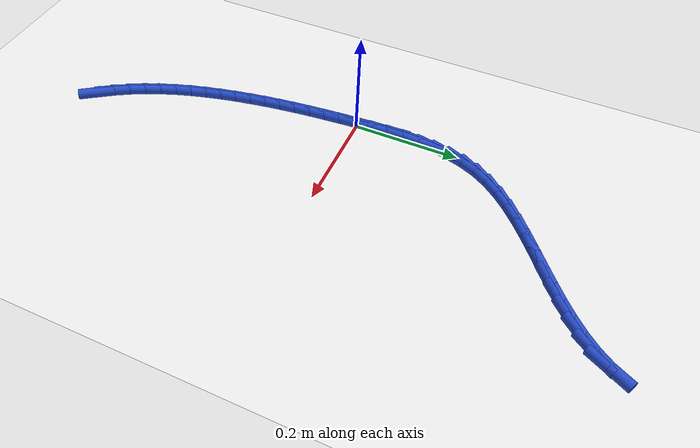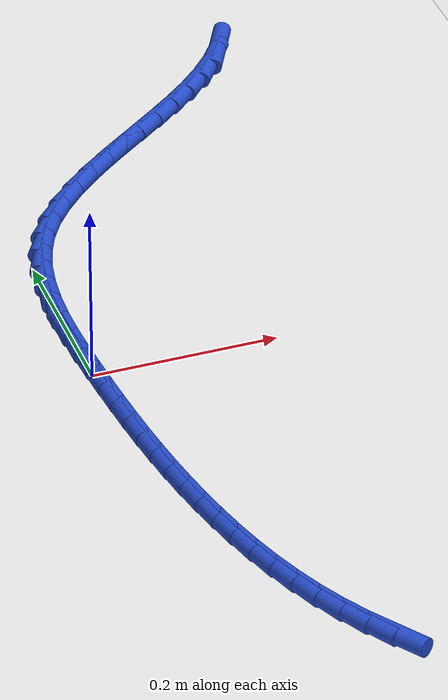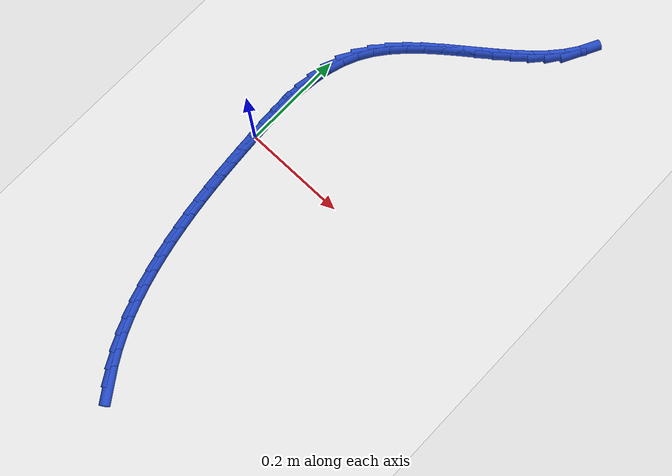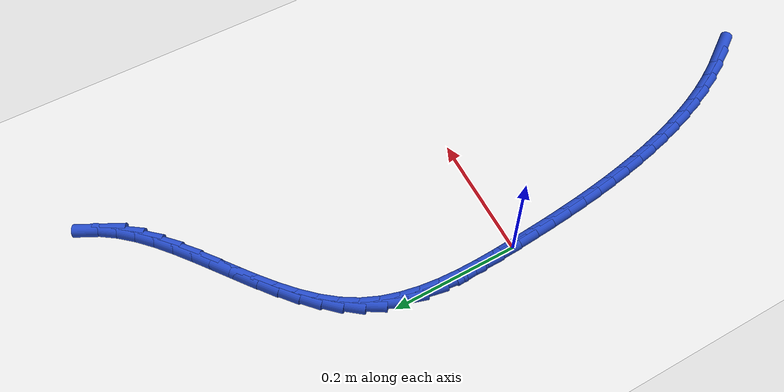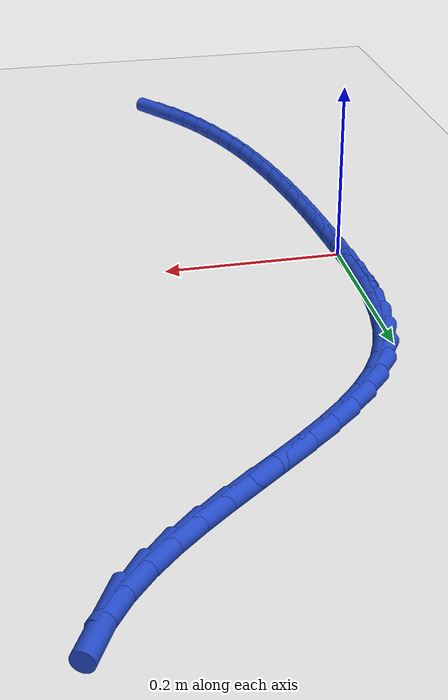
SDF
<sdf version="1.6">
 <world name="default">
  <model name="ground_plane">
   <static>1</static>
   <link name="link">
    <collision name="collision">
     <geometry><plane><normal>0 0 1</normal><size>100 100</size></plane></geometry>
     <surface><friction><ode><mu>100</mu><mu2>50</mu2></ode></friction></surface>
    </collision>
    <visual name="visual">
     <cast_shadows>0</cast_shadows>
     <geometry><plane><normal>0 0 1</normal><size>100 100</size></plane></geometry>
     <material>
      <script><uri>file://media/materials/scripts/gazebo.material</uri><name>Gazebo/WhiteGlow</name></script>
     </material>
    </visual>
   </link>
  </model>
  <model name="line">
   <link name="link_0">
    <pose>-9.75781955236954e-18 -8.326672684688674e-17 0.01 0 1.57 -1.511199921775227</pose>
    <collision name="collision">
     <geometry><cylinder><radius>0.01</radius><length>0.08</length></cylinder></geometry>
    </collision>
    <visual name="visual">
     <material>
      <script><name>Gazebo/Blue</name><uri>file://media/materials/scripts/gazebo.material</uri></script>
     </material>
     <geometry><cylinder><radius>0.01</radius><length>0.08</length></cylinder></geometry>
    </visual>
   </link>
   <link name="link_1">
    <pose>-0.0018788935683571061 0.03148962758798921 0.01 0 1.57 -1.5325228419579033</pose>
    <collision name="collision">
     <geometry><cylinder><radius>0.01</radius><length>0.08</length></cylinder></geometry>
    </collision>
    <visual name="visual">
     <material>
      <script><name>Gazebo/Blue</name><uri>file://media/materials/scripts/gazebo.material</uri></script>
     </material>
     <geometry><cylinder><radius>0.01</radius><length>0.08</length></cylinder></geometry>
    </visual>
   </link>
   <link name="link_2">
    <pose>-0.003091062676038948 0.0631454114593483 0.01 0 1.57 -1.5673808474522573</pose>
    <collision name="collision">
     <geometry><cylinder><radius>0.01</radius><length>0.08</length></cylinder></geometry>
    </collision>
    <visual name="visual">
     <material>
      <script><name>Gazebo/Blue</name><uri>file://media/materials/scripts/gazebo.material</uri></script>
     </material>
     <geometry><cylinder><radius>0.01</radius><length>0.08</length></cylinder></geometry>
    </visual>
   </link>
   <link name="link_3">
    <pose>-0.0031988975344590114 0.09471768237245247 0.01 0 1.57 1.5249210132544264</pose>
    <collision name="collision">
     <geometry><cylinder><radius>0.01</radius><length>0.08</length></cylinder></geometry>
    </collision>
    <visual name="visual">
     <material>
      <script><name>Gazebo/Blue</name><uri>file://media/materials/scripts/gazebo.material</uri></script>
     </material>
     <geometry><cylinder><radius>0.01</radius><length>0.08</length></cylinder></geometry>
    </visual>
   </link>
   <link name="link_4">
    <pose>-0.0017647883550307745 0.12595677108567713 0.01 0 1.57 1.459900204618824</pose>
    <collision name="collision">
     <geometry><cylinder><radius>0.01</radius><length>0.08</length></cylinder></geometry>
    </collision>
    <visual name="visual">
     <material>
      <script><name>Gazebo/Blue</name><uri>file://media/materials/scripts/gazebo.material</uri></script>
     </material>
     <geometry><cylinder><radius>0.01</radius><length>0.08</length></cylinder></geometry>
    </visual>
   </link>
   <link name="link_5">
    <pose>0.001648874650832295 0.1566130083573974 0.01 0 1.57 1.3777220439233588</pose>
    <collision name="collision">
     <geometry><cylinder><radius>0.01</radius><length>0.08</length></cylinder></geometry>
    </collision>
    <visual name="visual">
     <material>
      <script><name>Gazebo/Blue</name><uri>file://media/materials/scripts/gazebo.material</uri></script>
     </material>
     <geometry><cylinder><radius>0.01</radius><length>0.08</length></cylinder></geometry>
    </visual>
   </link>
   <link name="link_6">
    <pose>0.007479701271716713 0.18643672494598856 0.01 0 1.57 1.2773252558742256</pose>
    <collision name="collision">
     <geometry><cylinder><radius>0.01</radius><length>0.08</length></cylinder></geometry>
    </collision>
    <visual name="visual">
     <material>
      <script><name>Gazebo/Blue</name><uri>file://media/materials/scripts/gazebo.material</uri></script>
     </material>
     <geometry><cylinder><radius>0.01</radius><length>0.08</length></cylinder></geometry>
    </visual>
   </link>
   <link name="link_7">
    <pose>0.016165301296209016 0.21517825160982598 0.01 0 1.57 1.1588069050394254</pose>
    <collision name="collision">
     <geometry><cylinder><radius>0.01</radius><length>0.08</length></cylinder></geometry>
    </collision>
    <visual name="visual">
     <material>
      <script><name>Gazebo/Blue</name><uri>file://media/materials/scripts/gazebo.material</uri></script>
     </material>
     <geometry><cylinder><radius>0.01</radius><length>0.08</length></cylinder></geometry>
    </visual>
   </link>
   <link name="link_8">
    <pose>0.02814328451289572 0.24258791910728503 0.01 0 1.57 1.0272415689124124</pose>
    <collision name="collision">
     <geometry><cylinder><radius>0.01</radius><length>0.08</length></cylinder></geometry>
    </collision>
    <visual name="visual">
     <material>
      <script><name>Gazebo/Blue</name><uri>file://media/materials/scripts/gazebo.material</uri></script>
     </material>
     <geometry><cylinder><radius>0.01</radius><length>0.08</length></cylinder></geometry>
    </visual>
   </link>
   <link name="link_9">
    <pose>0.04377279549229901 0.26845294506043443 0.01 0 1.57 0.9093564041124712</pose>
    <collision name="collision">
     <geometry><cylinder><radius>0.01</radius><length>0.08</length></cylinder></geometry>
    </collision>
    <visual name="visual">
     <material>
      <script><name>Gazebo/Blue</name><uri>file://media/materials/scripts/gazebo.material</uri></script>
     </material>
     <geometry><cylinder><radius>0.01</radius><length>0.08</length></cylinder></geometry>
    </visual>
   </link>
   <link name="link_10">
    <pose>0.06277278021340472 0.2928615074246651 0.01 0 1.57 0.8167476944167987</pose>
    <collision name="collision">
     <geometry><cylinder><radius>0.01</radius><length>0.08</length></cylinder></geometry>
    </collision>
    <visual name="visual">
     <material>
      <script><name>Gazebo/Blue</name><uri>file://media/materials/scripts/gazebo.material</uri></script>
     </material>
     <geometry><cylinder><radius>0.01</radius><length>0.08</length></cylinder></geometry>
    </visual>
   </link>
   <link name="link_11">
    <pose>0.08454982922023695 0.31604862389707283 0.01 0 1.57 0.7473552997154909</pose>
    <collision name="collision">
     <geometry><cylinder><radius>0.01</radius><length>0.08</length></cylinder></geometry>
    </collision>
    <visual name="visual">
     <material>
      <script><name>Gazebo/Blue</name><uri>file://media/materials/scripts/gazebo.material</uri></script>
     </material>
     <geometry><cylinder><radius>0.01</radius><length>0.08</length></cylinder></geometry>
    </visual>
   </link>
   <link name="link_12">
    <pose>0.1085084251450236 0.3382503031138856 0.01 0 1.57 0.6985396626724754</pose>
    <collision name="collision">
     <geometry><cylinder><radius>0.01</radius><length>0.08</length></cylinder></geometry>
    </collision>
    <visual name="visual">
     <material>
      <script><name>Gazebo/Blue</name><uri>file://media/materials/scripts/gazebo.material</uri></script>
     </material>
     <geometry><cylinder><radius>0.01</radius><length>0.08</length></cylinder></geometry>
    </visual>
   </link>
   <link name="link_13">
    <pose>0.1340530506199926 0.3597025537113314 0.01 0 1.57 0.668058092013355</pose>
    <collision name="collision">
     <geometry><cylinder><radius>0.01</radius><length>0.08</length></cylinder></geometry>
    </collision>
    <visual name="visual">
     <material>
      <script><name>Gazebo/Blue</name><uri>file://media/materials/scripts/gazebo.material</uri></script>
     </material>
     <geometry><cylinder><radius>0.01</radius><length>0.08</length></cylinder></geometry>
    </visual>
   </link>
   <link name="link_14">
    <pose>0.1605881882773719 0.3806413843256385 0.01 0 1.57 0.6544330675874</pose>
    <collision name="collision">
     <geometry><cylinder><radius>0.01</radius><length>0.08</length></cylinder></geometry>
    </collision>
    <visual name="visual">
     <material>
      <script><name>Gazebo/Blue</name><uri>file://media/materials/scripts/gazebo.material</uri></script>
     </material>
     <geometry><cylinder><radius>0.01</radius><length>0.08</length></cylinder></geometry>
    </visual>
   </link>
   <link name="link_15">
    <pose>0.18751832074938934 0.40130280359303455 0.01 0 1.57 0.6570756806640027</pose>
    <collision name="collision">
     <geometry><cylinder><radius>0.01</radius><length>0.08</length></cylinder></geometry>
    </collision>
    <visual name="visual">
     <material>
      <script><name>Gazebo/Blue</name><uri>file://media/materials/scripts/gazebo.material</uri></script>
     </material>
     <geometry><cylinder><radius>0.01</radius><length>0.08</length></cylinder></geometry>
    </visual>
   </link>
   <link name="link_16">
    <pose>0.2142479306682729 0.4219228201497477 0.01 0 1.57 0.6763322537236033</pose>
    <collision name="collision">
     <geometry><cylinder><radius>0.01</radius><length>0.08</length></cylinder></geometry>
    </collision>
    <visual name="visual">
     <material>
      <script><name>Gazebo/Blue</name><uri>file://media/materials/scripts/gazebo.material</uri></script>
     </material>
     <geometry><cylinder><radius>0.01</radius><length>0.08</length></cylinder></geometry>
    </visual>
   </link>
   <link name="link_17">
    <pose>0.24018150066625055 0.4427374426320062 0.01 0 1.57 0.7135201583428747</pose>
    <collision name="collision">
     <geometry><cylinder><radius>0.01</radius><length>0.08</length></cylinder></geometry>
    </collision>
    <visual name="visual">
     <material>
      <script><name>Gazebo/Blue</name><uri>file://media/materials/scripts/gazebo.material</uri></script>
     </material>
     <geometry><cylinder><radius>0.01</radius><length>0.08</length></cylinder></geometry>
    </visual>
   </link>
   <link name="link_18">
    <pose>0.2647235133755502 0.46398267967603796 0.01 0 1.57 0.7709371945820565</pose>
    <collision name="collision">
     <geometry><cylinder><radius>0.01</radius><length>0.08</length></cylinder></geometry>
    </collision>
    <visual name="visual">
     <material>
      <script><name>Gazebo/Blue</name><uri>file://media/materials/scripts/gazebo.material</uri></script>
     </material>
     <geometry><cylinder><radius>0.01</radius><length>0.08</length></cylinder></geometry>
    </visual>
   </link>
   <link name="link_19">
    <pose>0.2872784514283997 0.4858945399180709 0.01 0 1.57 0.8517264316414026</pose>
    <collision name="collision">
     <geometry><cylinder><radius>0.01</radius><length>0.08</length></cylinder></geometry>
    </collision>
    <visual name="visual">
     <material>
      <script><name>Gazebo/Blue</name><uri>file://media/materials/scripts/gazebo.material</uri></script>
     </material>
     <geometry><cylinder><radius>0.01</radius><length>0.08</length></cylinder></geometry>
    </visual>
   </link>
   <link name="link_20">
    <pose>0.3072507974570271 0.5087090319943331 0.01 0 1.57 0.9593130246366601</pose>
    <collision name="collision">
     <geometry><cylinder><radius>0.01</radius><length>0.08</length></cylinder></geometry>
    </collision>
    <visual name="visual">
     <material>
      <script><name>Gazebo/Blue</name><uri>file://media/materials/scripts/gazebo.material</uri></script>
     </material>
     <geometry><cylinder><radius>0.01</radius><length>0.08</length></cylinder></geometry>
    </visual>
   </link>
   <link name="link_21">
    <pose>0.32404503409366026 0.5326621645410528 0.01 0 1.57 1.0959450255256458</pose>
    <collision name="collision">
     <geometry><cylinder><radius>0.01</radius><length>0.08</length></cylinder></geometry>
    </collision>
    <visual name="visual">
     <material>
      <script><name>Gazebo/Blue</name><uri>file://media/materials/scripts/gazebo.material</uri></script>
     </material>
     <geometry><cylinder><radius>0.01</radius><length>0.08</length></cylinder></geometry>
    </visual>
   </link>
   <link name="link_233">
    <pose>0.13340262286074633 -0.49531018709142666 0.01 0 1.57 -0.9650313949972913</pose>
    <collision name="collision">
     <geometry><cylinder><radius>0.01</radius><length>0.08</length></cylinder></geometry>
    </collision>
    <visual name="visual">
     <material>
      <script><name>Gazebo/Blue</name><uri>file://media/materials/scripts/gazebo.material</uri></script>
     </material>
     <geometry><cylinder><radius>0.01</radius><length>0.08</length></cylinder></geometry>
    </visual>
   </link>
   <link name="link_234">
    <pose>0.1158177398288557 -0.469921751596226 0.01 0 1.57 -1.0321710226774898</pose>
    <collision name="collision">
     <geometry><cylinder><radius>0.01</radius><length>0.08</length></cylinder></geometry>
    </collision>
    <visual name="visual">
     <material>
      <script><name>Gazebo/Blue</name><uri>file://media/materials/scripts/gazebo.material</uri></script>
     </material>
     <geometry><cylinder><radius>0.01</radius><length>0.08</length></cylinder></geometry>
    </visual>
   </link>
   <link name="link_235">
    <pose>0.10005098707865341 -0.44353664147861405 0.01 0 1.57 -1.094339050905677</pose>
    <collision name="collision">
     <geometry><cylinder><radius>0.01</radius><length>0.08</length></cylinder></geometry>
    </collision>
    <visual name="visual">
     <material>
      <script><name>Gazebo/Blue</name><uri>file://media/materials/scripts/gazebo.material</uri></script>
     </material>
     <geometry><cylinder><radius>0.01</radius><length>0.08</length></cylinder></geometry>
    </visual>
   </link>
   <link name="link_236">
    <pose>0.08598326260295024 -0.41627974692472514 0.01 0 1.57 -1.1509021897144345</pose>
    <collision name="collision">
     <geometry><cylinder><radius>0.01</radius><length>0.08</length></cylinder></geometry>
    </collision>
    <visual name="visual">
     <material>
      <script><name>Gazebo/Blue</name><uri>file://media/materials/scripts/gazebo.material</uri></script>
     </material>
     <geometry><cylinder><radius>0.01</radius><length>0.08</length></cylinder></geometry>
    </visual>
   </link>
   <link name="link_237">
    <pose>0.07348442991921098 -0.3882834281898599 0.01 0 1.57 -1.2018336557186902</pose>
    <collision name="collision">
     <geometry><cylinder><radius>0.01</radius><length>0.08</length></cylinder></geometry>
    </collision>
    <visual name="visual">
     <material>
      <script><name>Gazebo/Blue</name><uri>file://media/materials/scripts/gazebo.material</uri></script>
     </material>
     <geometry><cylinder><radius>0.01</radius><length>0.08</length></cylinder></geometry>
    </visual>
   </link>
   <link name="link_238">
    <pose>0.06242435254490042 -0.35968004552931904 0.01 0 1.57 -1.2472280911802835</pose>
    <collision name="collision">
     <geometry><cylinder><radius>0.01</radius><length>0.08</length></cylinder></geometry>
    </collision>
    <visual name="visual">
     <material>
      <script><name>Gazebo/Blue</name><uri>file://media/materials/scripts/gazebo.material</uri></script>
     </material>
     <geometry><cylinder><radius>0.01</radius><length>0.08</length></cylinder></geometry>
    </visual>
   </link>
   <link name="link_239">
    <pose>0.05267289399748343 -0.3306019591984035 0.01 0 1.57 -1.2872522881486574</pose>
    <collision name="collision">
     <geometry><cylinder><radius>0.01</radius><length>0.08</length></cylinder></geometry>
    </collision>
    <visual name="visual">
     <material>
      <script><name>Gazebo/Blue</name><uri>file://media/materials/scripts/gazebo.material</uri></script>
     </material>
     <geometry><cylinder><radius>0.01</radius><length>0.08</length></cylinder></geometry>
    </visual>
   </link>
   <link name="link_240">
    <pose>0.04409991779442501 -0.3011815294524144 0.01 0 1.57 -1.3221038983762456</pose>
    <collision name="collision">
     <geometry><cylinder><radius>0.01</radius><length>0.08</length></cylinder></geometry>
    </collision>
    <visual name="visual">
     <material>
      <script><name>Gazebo/Blue</name><uri>file://media/materials/scripts/gazebo.material</uri></script>
     </material>
     <geometry><cylinder><radius>0.01</radius><length>0.08</length></cylinder></geometry>
    </visual>
   </link>
   <link name="link_241">
    <pose>0.036575287453189526 -0.27155111654665104 0.01 0 1.57 -1.3519852400862908</pose>
    <collision name="collision">
     <geometry><cylinder><radius>0.01</radius><length>0.08</length></cylinder></geometry>
    </collision>
    <visual name="visual">
     <material>
      <script><name>Gazebo/Blue</name><uri>file://media/materials/scripts/gazebo.material</uri></script>
     </material>
     <geometry><cylinder><radius>0.01</radius><length>0.08</length></cylinder></geometry>
    </visual>
   </link>
   <link name="link_242">
    <pose>0.029968986011463392 -0.24184270158926233 0.01 0 1.57 -1.3779955501874779</pose>
    <collision name="collision">
     <geometry><cylinder><radius>0.01</radius><length>0.08</length></cylinder></geometry>
    </collision>
    <visual name="visual">
     <material>
      <script><name>Gazebo/Blue</name><uri>file://media/materials/scripts/gazebo.material</uri></script>
     </material>
     <geometry><cylinder><radius>0.01</radius><length>0.08</length></cylinder></geometry>
    </visual>
   </link>
   <link name="link_243">
    <pose>0.02416870730052033 -0.21213208275227805 0.01 0 1.57 -1.4020013745462563</pose>
    <collision name="collision">
     <geometry><cylinder><radius>0.01</radius><length>0.08</length></cylinder></geometry>
    </collision>
    <visual name="visual">
     <material>
      <script><name>Gazebo/Blue</name><uri>file://media/materials/scripts/gazebo.material</uri></script>
     </material>
     <geometry><cylinder><radius>0.01</radius><length>0.08</length></cylinder></geometry>
    </visual>
   </link>
   <link name="link_244">
    <pose>0.01909844490454583 -0.18237990658062217 0.01 0 1.57 -1.424045963002378</pose>
    <collision name="collision">
     <geometry><cylinder><radius>0.01</radius><length>0.08</length></cylinder></geometry>
    </collision>
    <visual name="visual">
     <material>
      <script><name>Gazebo/Blue</name><uri>file://media/materials/scripts/gazebo.material</uri></script>
     </material>
     <geometry><cylinder><radius>0.01</radius><length>0.08</length></cylinder></geometry>
    </visual>
   </link>
   <link name="link_245">
    <pose>0.01468664144598563 -0.15253270618996284 0.01 0 1.57 -1.4439657533126657</pose>
    <collision name="collision">
     <geometry><cylinder><radius>0.01</radius><length>0.08</length></cylinder></geometry>
    </collision>
    <visual name="visual">
     <material>
      <script><name>Gazebo/Blue</name><uri>file://media/materials/scripts/gazebo.material</uri></script>
     </material>
     <geometry><cylinder><radius>0.01</radius><length>0.08</length></cylinder></geometry>
    </visual>
   </link>
   <link name="link_246">
    <pose>0.010861739547285471 -0.12253701469596823 0.01 0 1.57 -1.461635459964996</pose>
    <collision name="collision">
     <geometry><cylinder><radius>0.01</radius><length>0.08</length></cylinder></geometry>
    </collision>
    <visual name="visual">
     <material>
      <script><name>Gazebo/Blue</name><uri>file://media/materials/scripts/gazebo.material</uri></script>
     </material>
     <geometry><cylinder><radius>0.01</radius><length>0.08</length></cylinder></geometry>
    </visual>
   </link>
   <link name="link_247">
    <pose>0.007552181830891086 -0.09233936521430647 0.01 0 1.57 -1.476968159601189</pose>
    <collision name="collision">
     <geometry><cylinder><radius>0.01</radius><length>0.08</length></cylinder></geometry>
    </collision>
    <visual name="visual">
     <material>
      <script><name>Gazebo/Blue</name><uri>file://media/materials/scripts/gazebo.material</uri></script>
     </material>
     <geometry><cylinder><radius>0.01</radius><length>0.08</length></cylinder></geometry>
    </visual>
   </link>
   <link name="link_248">
    <pose>0.004686410919248218 -0.061886290860645725 0.01 0 1.57 -1.4899139296414081</pose>
    <collision name="collision">
     <geometry><cylinder><radius>0.01</radius><length>0.08</length></cylinder></geometry>
    </collision>
    <visual name="visual">
     <material>
      <script><name>Gazebo/Blue</name><uri>file://media/materials/scripts/gazebo.material</uri></script>
     </material>
     <geometry><cylinder><radius>0.01</radius><length>0.08</length></cylinder></geometry>
    </visual>
   </link>
   <link name="link_249">
    <pose>0.0021928694348026037 -0.031124324750654173 0.01 0 1.57 -1.5004573940177819</pose>
    <collision name="collision">
     <geometry><cylinder><radius>0.01</radius><length>0.08</length></cylinder></geometry>
    </collision>
    <visual name="visual">
     <material>
      <script><name>Gazebo/Blue</name><uri>file://media/materials/scripts/gazebo.material</uri></script>
     </material>
     <geometry><cylinder><radius>0.01</radius><length>0.08</length></cylinder></geometry>
    </visual>
   </link>
   <link name="link_250">
    <pose>-2.0599841277224584e-17 4.85722573273506e-17 0.01 0 1.57 -1.5086145334001073</pose>
    <collision name="collision">
     <geometry><cylinder><radius>0.01</radius><length>0.08</length></cylinder></geometry>
    </collision>
    <visual name="visual">
     <material>
      <script><name>Gazebo/Blue</name><uri>file://media/materials/scripts/gazebo.material</uri></script>
     </material>
     <geometry><cylinder><radius>0.01</radius><length>0.08</length></cylinder></geometry>
    </visual>
   </link>
   <link name="link_251">
    <pose>-0.001963754762713916 0.031540150275648805 0.01 0 1.57 -1.5144290805081975</pose>
    <collision name="collision">
     <geometry><cylinder><radius>0.01</radius><length>0.08</length></cylinder></geometry>
    </collision>
    <visual name="visual">
     <material>
      <script><name>Gazebo/Blue</name><uri>file://media/materials/scripts/gazebo.material</uri></script>
     </material>
     <geometry><cylinder><radius>0.01</radius><length>0.08</length></cylinder></geometry>
    </visual>
   </link>
   <link name="link_252">
    <pose>-0.003769952230893344 0.06354959296062393 0.01 0 1.57 -1.5115427746876833</pose>
    <collision name="collision">
     <geometry><cylinder><radius>0.01</radius><length>0.08</length></cylinder></geometry>
    </collision>
    <visual name="visual">
     <material>
      <script><name>Gazebo/Blue</name><uri>file://media/materials/scripts/gazebo.material</uri></script>
     </material>
     <geometry><cylinder><radius>0.01</radius><length>0.08</length></cylinder></geometry>
    </visual>
   </link>
  </model>
 </world>
</sdf>
